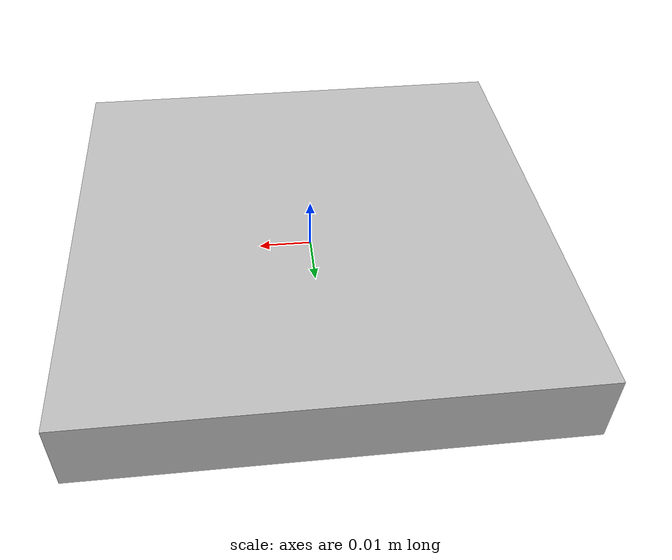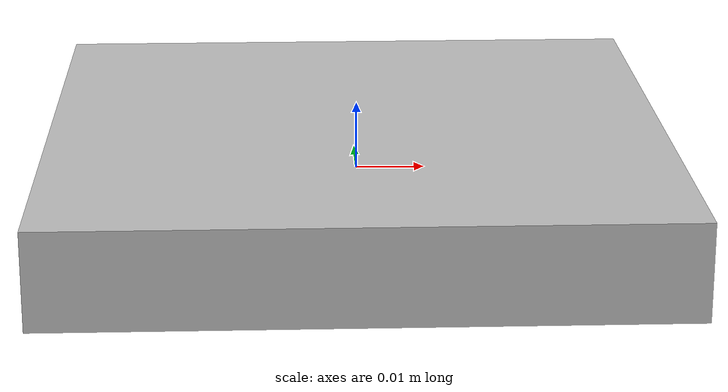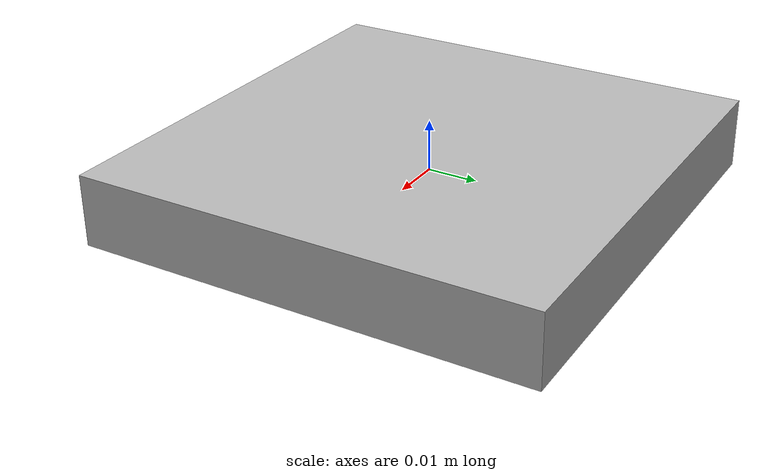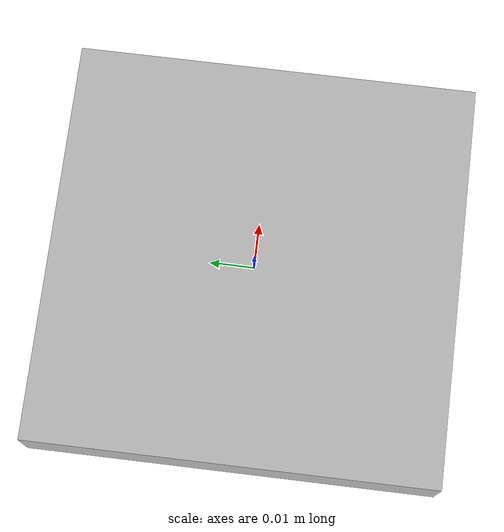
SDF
<?xml version='1.0'?>
<sdf version='1.6'>
  <model name='Ar_tags'>
    <link name='link_1'>
        <visual name='visual'>
        <pose frame=''>0 0 0 0 -0 0</pose>
        <geometry>
          <mesh>
            <uri>model://Ar_tags/meshes/Ar_tag.dae</uri>
            <scale>1 1 1</scale>
          </mesh>
        </geometry>
       	<material>
          <script>
            <uri>model://Ar_tags/materials/scripts</uri>
            <uri>model://Ar_tags/materials/textures</uri>
            <name>Ar_tags</name>
          </script>
        </material>
        <cast_shadows>1</cast_shadows>
        <transparency>0</transparency>
      </visual>
      <collision name='collision'>
        <laser_retro>0</laser_retro>
        <max_contacts>10</max_contacts>
        <pose frame=''>0 0 0 0 -0 0</pose>
        <geometry>
          <mesh>
            <uri>model://Ar_tags/meshes/Ar_tag.dae</uri>
            <scale>1 1 1</scale>
          </mesh>
        </geometry>
       </collision>
    </link>
    <static>1</static>
    <allow_auto_disable>1</allow_auto_disable>
  </model>
</sdf>
